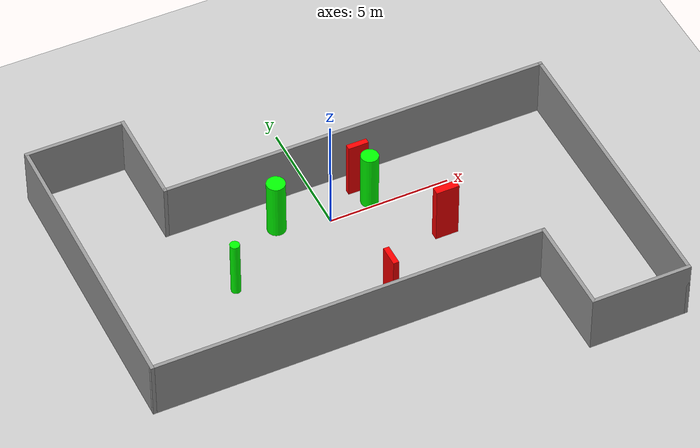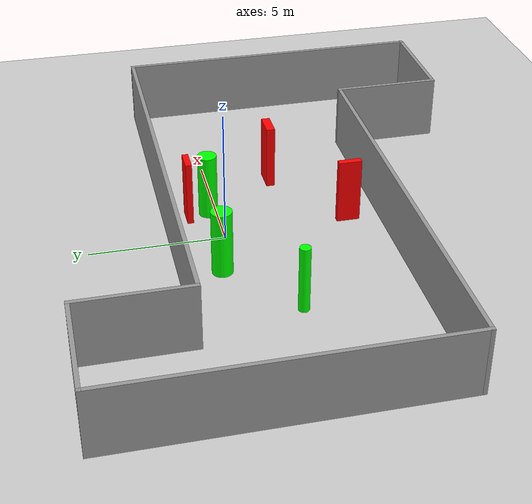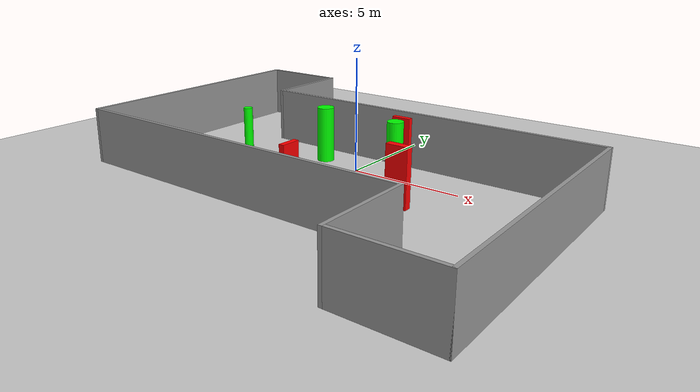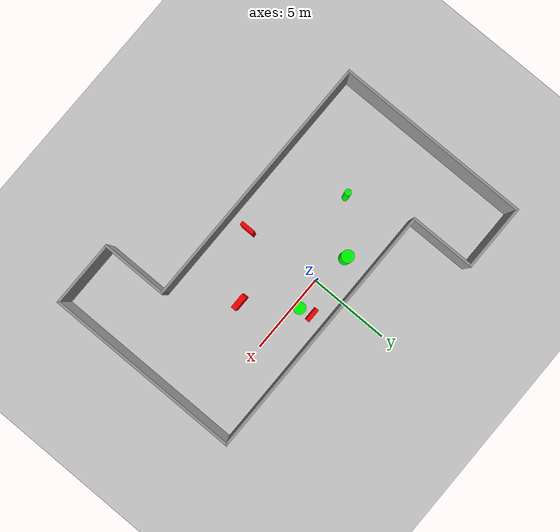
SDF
<sdf version="1.7">
 <world name="default">
  <light name="sun" type="directional">
   <pose>0 0 10 0 -0 0</pose>
   <diffuse>0.8 0.8 0.8 1</diffuse>
   <specular>0.2 0.2 0.2 1</specular>
   <attenuation>
    <range>1000</range>
    <constant>0.9</constant>
    <linear>0.01</linear>
    <quadratic>0.001</quadratic>
   </attenuation>
   <direction>-0.5 0.1 -0.9</direction>
   <spot><inner_angle>0</inner_angle><outer_angle>0</outer_angle><falloff>0</falloff></spot>
  </light>
  <model name="ground_plane">
   <static>1</static>
   <link name="link">
    <collision name="collision">
     <geometry><plane><normal>0 0 1</normal><size>100 100</size></plane></geometry>
     <surface>
      <contact><collide_bitmask>65535</collide_bitmask></contact>
      <friction><ode><mu>100</mu><mu2>50</mu2></ode></friction>
     </surface>
    </collision>
    <visual name="visual">
     <cast_shadows>0</cast_shadows>
     <geometry><plane><normal>0 0 1</normal><size>100 100</size></plane></geometry>
     <material>
      <script><uri>file://media/materials/scripts/gazebo.material</uri><name>Gazebo/Grey</name></script>
     </material>
    </visual>
   </link>
  </model>
  <gravity>0 0 -9.8</gravity>
  <magnetic_field>6e-06 2.3e-05 -4.2e-05</magnetic_field>
  <atmosphere type="adiabatic"/>
  <physics type="ode">
   <max_step_size>0.001</max_step_size>
   <real_time_factor>1</real_time_factor>
   <real_time_update_rate>1000</real_time_update_rate>
  </physics>
  <scene><ambient>0.4 0.4 0.4 1</ambient><background>0.7 0.7 0.7 1</background><shadows>1</shadows></scene>
  <spherical_coordinates>
   <surface_model>EARTH_WGS84</surface_model>
   <latitude_deg>0</latitude_deg>
   <longitude_deg>0</longitude_deg>
   <elevation>0</elevation>
   <heading_deg>0</heading_deg>
  </spherical_coordinates>
  <model name="my_base_walls">
   <link name="Wall_13">
    <collision name="Wall_13_Collision">
     <geometry><box><size>12.15 0.15 2.5</size></box></geometry>
     <pose>0 0 1.25 0 -0 0</pose>
    </collision>
    <visual name="Wall_13_Visual">
     <pose>0 0 1.25 0 -0 0</pose>
     <geometry><box><size>12.15 0.15 2.5</size></box></geometry>
     <material>
      <script><uri>file://media/materials/scripts/gazebo.material</uri><name>Gazebo/Grey</name></script>
      <ambient>1 1 1 1</ambient>
     </material>
     <meta><layer>0</layer></meta>
    </visual>
    <pose>10 -2 0 0 -0 1.5708</pose>
   </link>
   <link name="Wall_15">
    <collision name="Wall_15_Collision">
     <geometry><box><size>16.15 0.15 2.5</size></box></geometry>
     <pose>0 0 1.25 0 -0 0</pose>
    </collision>
    <visual name="Wall_15_Visual">
     <pose>0 0 1.25 0 -0 0</pose>
     <geometry><box><size>16.15 0.15 2.5</size></box></geometry>
     <material>
      <script><uri>file://media/materials/scripts/gazebo.material</uri><name>Gazebo/Grey</name></script>
      <ambient>1 1 1 1</ambient>
     </material>
     <meta><layer>0</layer></meta>
    </visual>
    <pose>2 4 0 0 -0 3.14159</pose>
   </link>
   <link name="Wall_17">
    <collision name="Wall_17_Collision">
     <geometry><box><size>4.15 0.15 2.5</size></box></geometry>
     <pose>0 0 1.25 0 -0 0</pose>
    </collision>
    <visual name="Wall_17_Visual">
     <pose>0 0 1.25 0 -0 0</pose>
     <geometry><box><size>4.15 0.15 2.5</size></box></geometry>
     <material>
      <script><uri>file://media/materials/scripts/gazebo.material</uri><name>Gazebo/Grey</name></script>
      <ambient>1 1 1 1</ambient>
     </material>
     <meta><layer>0</layer></meta>
    </visual>
    <pose>6 -6 0 0 -0 -1.5708</pose>
   </link>
   <link name="Wall_19">
    <collision name="Wall_19_Collision">
     <geometry><box><size>12.15 0.15 2.5</size></box></geometry>
     <pose>0 0 1.25 0 -0 0</pose>
    </collision>
    <visual name="Wall_19_Visual">
     <pose>0 0 1.25 0 -0 0</pose>
     <geometry><box><size>12.15 0.15 2.5</size></box></geometry>
     <material>
      <script><uri>file://media/materials/scripts/gazebo.material</uri><name>Gazebo/Grey</name></script>
      <ambient>1 1 1 1</ambient>
     </material>
     <meta><layer>0</layer></meta>
    </visual>
    <pose>-10 2 0 0 -0 1.5708</pose>
   </link>
   <link name="Wall_21">
    <collision name="Wall_21_Collision">
     <geometry><box><size>4.15 0.15 2.5</size></box></geometry>
     <pose>0 0 1.25 0 -0 0</pose>
    </collision>
    <visual name="Wall_21_Visual">
     <pose>0 0 1.25 0 -0 0</pose>
     <geometry><box><size>4.15 0.15 2.5</size></box></geometry>
     <material>
      <script><uri>file://media/materials/scripts/gazebo.material</uri><name>Gazebo/Grey</name></script>
      <ambient>1 1 1 1</ambient>
     </material>
     <meta><layer>0</layer></meta>
    </visual>
    <pose>-8 8 0 0 -0 0</pose>
   </link>
   <link name="Wall_23">
    <collision name="Wall_23_Collision">
     <geometry><box><size>4.15 0.15 2.5</size></box></geometry>
     <pose>0 0 1.25 0 -0 0</pose>
    </collision>
    <visual name="Wall_23_Visual">
     <pose>0 0 1.25 0 -0 0</pose>
     <geometry><box><size>4.15 0.15 2.5</size></box></geometry>
     <material>
      <script><uri>file://media/materials/scripts/gazebo.material</uri><name>Gazebo/Grey</name></script>
      <ambient>1 1 1 1</ambient>
     </material>
     <meta><layer>0</layer></meta>
    </visual>
    <pose>-6 6 0 0 -0 -1.5708</pose>
   </link>
   <link name="Wall_25">
    <collision name="Wall_25_Collision">
     <geometry><box><size>4.15 0.15 2.5</size></box></geometry>
     <pose>0 0 1.25 0 -0 0</pose>
    </collision>
    <visual name="Wall_25_Visual">
     <pose>0 0 1.25 0 -0 0</pose>
     <geometry><box><size>4.15 0.15 2.5</size></box></geometry>
     <material>
      <script><uri>file://media/materials/scripts/gazebo.material</uri><name>Gazebo/Grey</name></script>
      <ambient>1 1 1 1</ambient>
     </material>
     <meta><layer>0</layer></meta>
    </visual>
    <pose>8 -8 0 0 -0 0</pose>
   </link>
   <link name="Wall_9">
    <collision name="Wall_9_Collision">
     <geometry><box><size>16.15 0.15 2.5</size></box></geometry>
     <pose>0 0 1.25 0 -0 0</pose>
    </collision>
    <visual name="Wall_9_Visual">
     <pose>0 0 1.25 0 -0 0</pose>
     <geometry><box><size>16.15 0.15 2.5</size></box></geometry>
     <material>
      <script><uri>file://media/materials/scripts/gazebo.material</uri><name>Gazebo/Grey</name></script>
      <ambient>1 1 1 1</ambient>
     </material>
     <meta><layer>0</layer></meta>
    </visual>
    <pose>-2 -4 0 0 -0 3.14159</pose>
   </link>
   <static>1</static>
   <pose>-0 -2 0 0 -0 0</pose>
  </model>
  <model name="cylinder1">
   <static>1</static>
   <link name="link">
    <inertial>
     <mass>1</mass>
     <inertia><ixx>0.5</ixx><ixy>0</ixy><ixz>0</ixz><iyy>0.5</iyy><iyz>0</iyz><izz>1</izz></inertia>
    </inertial>
    <collision name="collision">
     <geometry><cylinder><radius>0.357656855780047</radius><length>2.5</length></cylinder></geometry>
    </collision>
    <visual name="visual">
     <geometry><cylinder><radius>0.357656855780047</radius><length>2.5</length></cylinder></geometry>
     <material>
      <ambient>0 1 0 1</ambient>
      <diffuse>0 1 0 1</diffuse>
      <specular>0.1 0.1 0.1 1</specular>
      <emissive>0 0 0 0</emissive>
     </material>
    </visual>
   </link>
   <pose>1.79663872710944 0.3023407849011175 1.25 0 0 0</pose>
  </model>
  <model name="cylinder2">
   <static>1</static>
   <link name="link">
    <inertial>
     <mass>1</mass>
     <inertia><ixx>0.5</ixx><ixy>0</ixy><ixz>0</ixz><iyy>0.5</iyy><iyz>0</iyz><izz>1</izz></inertia>
    </inertial>
    <collision name="collision">
     <geometry><cylinder><radius>0.3800583502715995</radius><length>2.5</length></cylinder></geometry>
    </collision>
    <visual name="visual">
     <geometry><cylinder><radius>0.3800583502715995</radius><length>2.5</length></cylinder></geometry>
     <material>
      <ambient>0 1 0 1</ambient>
      <diffuse>0 1 0 1</diffuse>
      <specular>0.1 0.1 0.1 1</specular>
      <emissive>0 0 0 0</emissive>
     </material>
    </visual>
   </link>
   <pose>-2.0580928518029236 0.5053145252827331 1.25 0 0 0</pose>
  </model>
  <model name="cylinder3">
   <static>1</static>
   <link name="link">
    <inertial>
     <mass>1</mass>
     <inertia><ixx>0.5</ixx><ixy>0</ixy><ixz>0</ixz><iyy>0.5</iyy><iyz>0</iyz><izz>1</izz></inertia>
    </inertial>
    <collision name="collision">
     <geometry><cylinder><radius>0.19865119997487768</radius><length>2.5</length></cylinder></geometry>
    </collision>
    <visual name="visual">
     <geometry><cylinder><radius>0.19865119997487768</radius><length>2.5</length></cylinder></geometry>
     <material>
      <ambient>0 1 0 1</ambient>
      <diffuse>0 1 0 1</diffuse>
      <specular>0.1 0.1 0.1 1</specular>
      <emissive>0 0 0 0</emissive>
     </material>
    </visual>
   </link>
   <pose>-4.7760590023437395 -1.731319114304207 1.25 0 0 0</pose>
  </model>
  <model name="box1">
   <static>1</static>
   <link name="link">
    <inertial>
     <mass>1</mass>
     <inertia><ixx>0.083</ixx><ixy>0</ixy><ixz>0</ixz><iyy>0.083</iyy><iyz>0</iyz><izz>0.083</izz></inertia>
    </inertial>
    <collision name="collision">
     <geometry><box><size>0.8430336365789928 0.2320911476792384 2.5</size></box></geometry>
    </collision>
    <visual name="visual">
     <geometry><box><size>0.8430336365789928 0.2320911476792384 2.5</size></box></geometry>
     <material>
      <ambient>1 0 0 1</ambient>
      <diffuse>1 0 0 1</diffuse>
      <specular>0.1 0.1 0.1 1</specular>
      <emissive>0 0 0 0</emissive>
     </material>
    </visual>
    <sensor name="my_contact" type="contact">
     <contact><collision>box_collision</collision><topic>__default_topic__</topic></contact>
    </sensor>
   </link>
   <pose>1.6437252362651869 1.075332027418745 1.25 0 0 0</pose>
  </model>
  <model name="box2">
   <static>1</static>
   <link name="link">
    <inertial>
     <mass>1</mass>
     <inertia><ixx>0.083</ixx><ixy>0</ixy><ixz>0</ixz><iyy>0.083</iyy><iyz>0</iyz><izz>0.083</izz></inertia>
    </inertial>
    <collision name="collision">
     <geometry><box><size>0.9536428882072017 0.3271488479497317 2.5</size></box></geometry>
    </collision>
    <visual name="visual">
     <geometry><box><size>0.9536428882072017 0.3271488479497317 2.5</size></box></geometry>
     <material>
      <ambient>1 0 0 1</ambient>
      <diffuse>1 0 0 1</diffuse>
      <specular>0.1 0.1 0.1 1</specular>
      <emissive>0 0 0 0</emissive>
     </material>
    </visual>
    <sensor name="my_contact" type="contact">
     <contact><collision>box_collision</collision><topic>__default_topic__</topic></contact>
    </sensor>
   </link>
   <pose>3.6885107923853084 -2.4509656490443374 1.25 0 0 0</pose>
  </model>
  <model name="box3">
   <static>1</static>
   <link name="link">
    <inertial>
     <mass>1</mass>
     <inertia><ixx>0.083</ixx><ixy>0</ixy><ixz>0</ixz><iyy>0.083</iyy><iyz>0</iyz><izz>0.083</izz></inertia>
    </inertial>
    <collision name="collision">
     <geometry><box><size>0.233822498549009 0.8647817070033892 2.5</size></box></geometry>
    </collision>
    <visual name="visual">
     <geometry><box><size>0.233822498549009 0.8647817070033892 2.5</size></box></geometry>
     <material>
      <ambient>1 0 0 1</ambient>
      <diffuse>1 0 0 1</diffuse>
      <specular>0.1 0.1 0.1 1</specular>
      <emissive>0 0 0 0</emissive>
     </material>
    </visual>
    <sensor name="my_contact" type="contact">
     <contact><collision>box_collision</collision><topic>__default_topic__</topic></contact>
    </sensor>
   </link>
   <pose>0.26703768982204057 -4.7284732728172445 1.25 0 0 0</pose>
  </model>
 </world>
</sdf>
